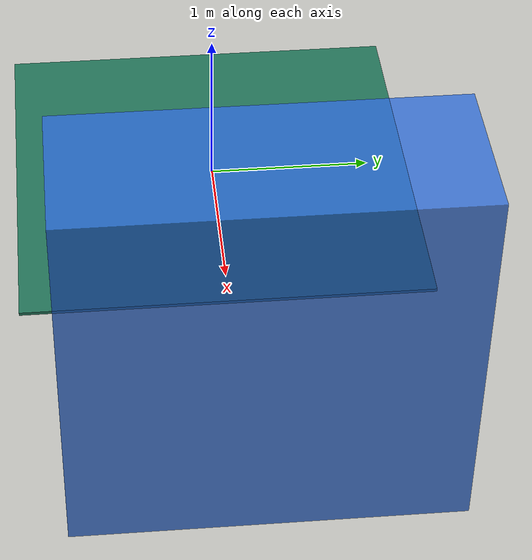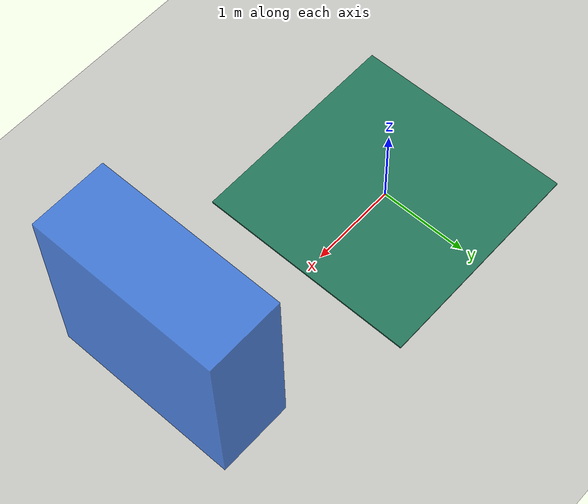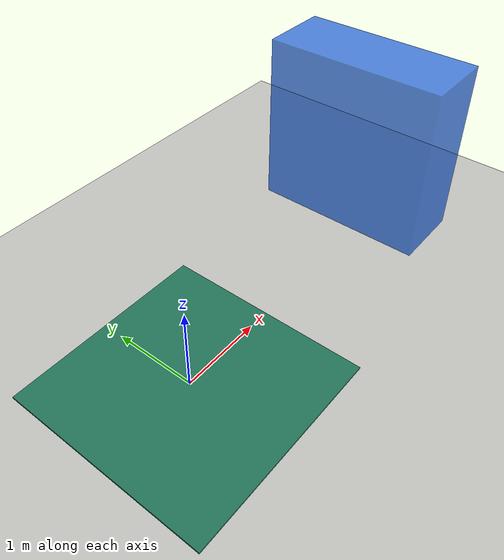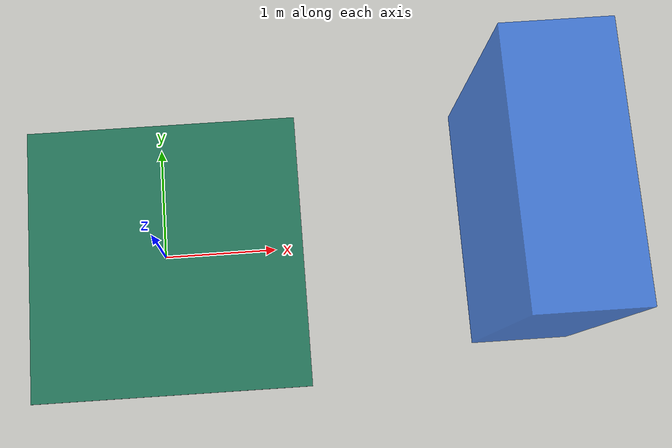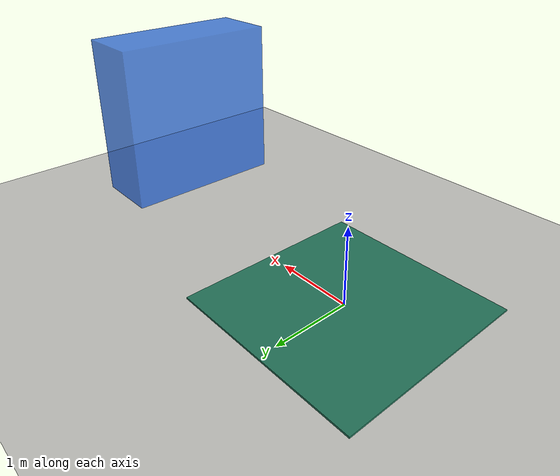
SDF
<?xml version="1.0" encoding="UTF-8"?>
<sdf version="1.9">
  <world name="hnuter_cube_contact">
    <physics type="ode">
      <max_step_size>0.004</max_step_size>
      <real_time_factor>1.0</real_time_factor>
      <real_time_update_rate>250</real_time_update_rate>
    </physics>
    <gravity>0 0 -9.8</gravity>
    <magnetic_field>6e-06 2.3e-05 -4.2e-05</magnetic_field>
    <atmosphere type="adiabatic"/>

    <!-- Declaring any system plugin disables Gazebo's implicit defaults, so
         keep the complete PX4 sensor / spawn set here in addition to the two
         systems used by this experiment. -->
    <plugin name="gz::sim::systems::Physics" filename="gz-sim-physics-system"/>
    <plugin name="gz::sim::systems::UserCommands" filename="gz-sim-user-commands-system"/>
    <plugin name="gz::sim::systems::SceneBroadcaster" filename="gz-sim-scene-broadcaster-system"/>
    <plugin name="gz::sim::systems::Contact" filename="gz-sim-contact-system"/>
    <plugin name="gz::sim::systems::Imu" filename="gz-sim-imu-system"/>
    <plugin name="gz::sim::systems::Magnetometer" filename="gz-sim-magnetometer-system"/>
    <plugin name="gz::sim::systems::AirPressure" filename="gz-sim-air-pressure-system"/>
    <plugin name="gz::sim::systems::AirSpeed" filename="gz-sim-air-speed-system"/>
    <plugin name="gz::sim::systems::ApplyLinkWrench" filename="gz-sim-apply-link-wrench-system"/>
    <plugin name="gz::sim::systems::NavSat" filename="gz-sim-navsat-system"/>
    <plugin name="gz::sim::systems::Sensors" filename="gz-sim-sensors-system">
      <render_engine>ogre2</render_engine>
    </plugin>

    <scene>
      <grid>true</grid>
      <ambient>0.45 0.45 0.45 1</ambient>
      <background>0.72 0.76 0.82 1</background>
      <shadows>true</shadows>
    </scene>

    <model name="ground_plane">
      <static>true</static>
      <link name="link">
        <collision name="collision">
          <geometry><plane><normal>0 0 1</normal><size>100 100</size></plane></geometry>
          <surface><friction><ode/></friction><bounce/><contact/></surface>
        </collision>
        <visual name="visual">
          <geometry><plane><normal>0 0 1</normal><size>100 100</size></plane></geometry>
          <material>
            <ambient>0.76 0.76 0.74 1</ambient>
            <diffuse>0.80 0.80 0.78 1</diffuse>
          </material>
        </visual>
      </link>
    </model>

    <model name="start_pad">
      <static>true</static>
      <pose>0 0 0.01 0 0 0</pose>
      <link name="link">
        <visual name="visual">
          <geometry><box><size>2.5 2.5 0.02</size></box></geometry>
          <material>
            <ambient>0.12 0.38 0.30 1</ambient>
            <diffuse>0.15 0.48 0.37 1</diffuse>
          </material>
        </visual>
      </link>
    </model>

    <model name="interaction_cube">
      <pose>3.0 0 1.50 0 0 0</pose>
      <link name="cube_link">
        <inertial>
          <mass>0.05</mass>
          <inertia>
            <ixx>0.0333333</ixx>
            <ixy>0</ixy>
            <ixz>0</ixz>
            <iyy>0.0193333</iyy>
            <iyz>0</iyz>
            <izz>0.0193333</izz>
          </inertia>
        </inertial>
        <collision name="cube_collision">
          <geometry><box><size>0.8 2.0 2.0</size></box></geometry>
          <surface>
            <friction><ode><mu>0.15</mu><mu2>0.15</mu2></ode></friction>
            <contact><ode><kp>25000</kp><kd>120</kd></ode></contact>
          </surface>
        </collision>
        <visual name="cube_visual">
          <geometry><box><size>0.8 2.0 2.0</size></box></geometry>
          <material>
            <ambient>0.18 0.38 0.78 0.82</ambient>
            <diffuse>0.20 0.46 0.92 0.82</diffuse>
            <specular>0.25 0.25 0.30 1</specular>
          </material>
          <transparency>0.18</transparency>
        </visual>
        <sensor name="cube_contact_sensor" type="contact">
          <contact>
            <collision>cube_collision</collision>
            <topic>/hnuter/cube_contact</topic>
          </contact>
          <always_on>true</always_on>
          <update_rate>250</update_rate>
        </sensor>
      </link>

      <joint name="cube_x_rail" type="prismatic">
        <parent>world</parent>
        <child>cube_link</child>
        <axis>
          <xyz>1 0 0</xyz>
          <limit><lower>0.0</lower><upper>4.0</upper></limit>
          <dynamics><damping>0.02</damping><friction>0.0</friction></dynamics>
        </axis>
      </joint>
    </model>

    <light name="sunUTC" type="directional">
      <pose>0 0 500 0 0 0</pose>
      <cast_shadows>true</cast_shadows>
      <intensity>1.0</intensity>
      <direction>-0.2 0.5 -0.84</direction>
      <diffuse>0.92 0.92 0.90 1</diffuse>
      <specular>0.28 0.28 0.28 1</specular>
      <attenuation><range>2000</range><linear>0</linear><constant>1</constant><quadratic>0</quadratic></attenuation>
    </light>

    <spherical_coordinates>
      <surface_model>EARTH_WGS84</surface_model>
      <world_frame_orientation>ENU</world_frame_orientation>
      <latitude_deg>47.397971057728974</latitude_deg>
      <longitude_deg>8.546163739800146</longitude_deg>
      <elevation>0</elevation>
    </spherical_coordinates>
  </world>
</sdf>
